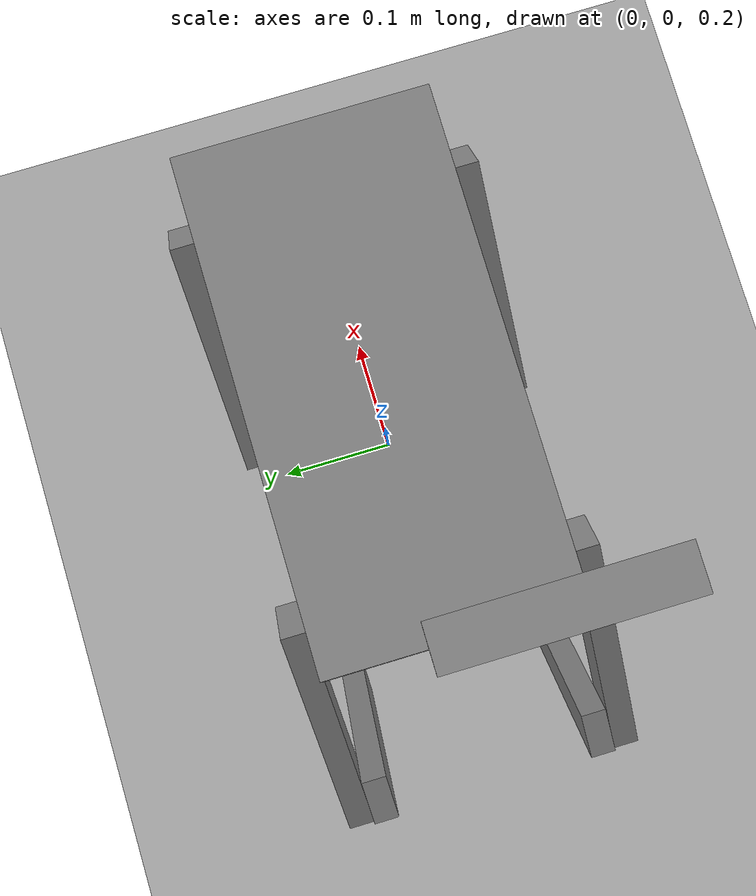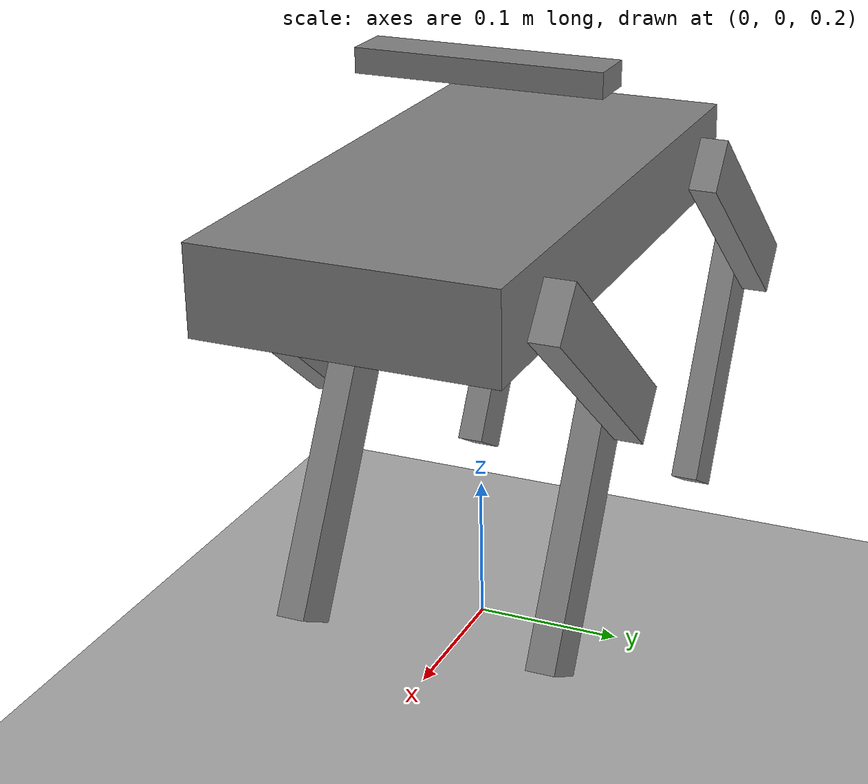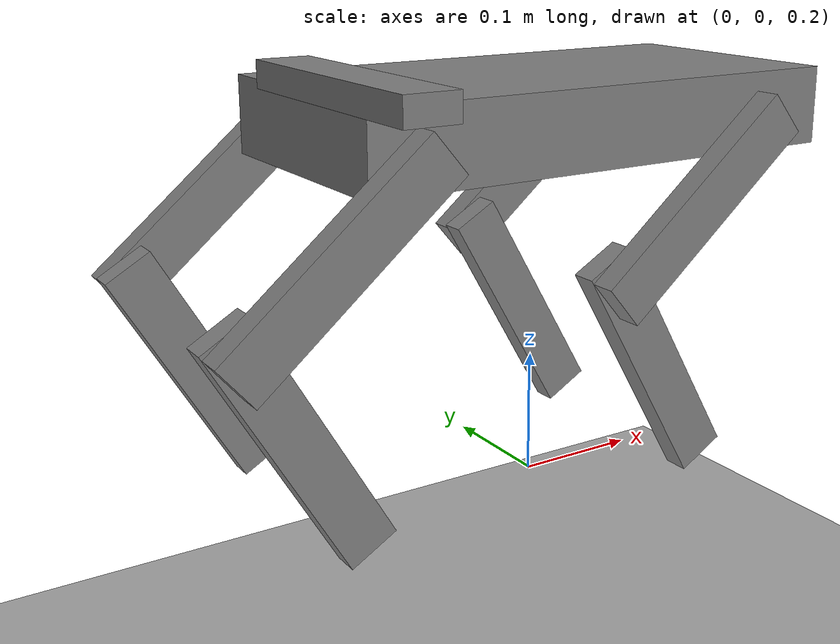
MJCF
<mujoco model="simple_quadraped">
    <compiler coordinate="local"/>
    <option timestep="0.01"/>
    <option gravity="0 0 -9.81"/>
    <asset>
        <texture name="checkered_floor" type="2d" builtin="checker" rgb1="0.8 0.8 0.8" rgb2="0.5 0.5 0.5" width="512" height="512"/>
        <material name="floor_mat" texture="checkered_floor" texrepeat="20 20" reflectance="0.5" shininess="1" specular="1"/>
    </asset>
    <worldbody>
        <light diffuse=".5 .5 .5" pos="0 0 10" dir="0 0 -1"/>
        <body name="torso" pos="0 0 0.5">
            <freejoint/>
            <geom type="box" size="0.2 0.1 0.03" mass="10"/>
            <!-- Front Right Leg -->
            <body name="front_right_leg_upper" pos="0.15 0.11 0" euler="0 50 0">
                <joint name="front_right_shoulder" type="hinge" axis="0 1 0" range="-30 30"/>
                <geom type="box" size="0.02 0.01 0.1" pos="0 0 -0.1" mass="1"/>
                <body name="front_right_leg_lower" pos="-0.02 0 -0.18" euler="0 -80 0">
                    <joint name="front_right_elbow" type="hinge" axis="0 1 0" range="-30 30"/>
                    <geom type="box" size="0.02 0.01 0.1" pos="0 -0.02 -0.1" mass="1"/>
                </body>
            </body>
            <!-- Front Left Leg -->
            <body name="front_left_leg_upper" pos="-0.15 0.11 0" euler="0 50 0">
                <joint name="front_left_shoulder" type="hinge" axis="0 1 0" range="-30 30"/>
                <geom type="box" size="0.02 0.01 0.1" pos="0 0 -0.1" mass="1"/>
                <body name="front_left_leg_lower" pos="-0.02 0 -0.18" euler="0 -80 0">
                    <joint name="front_left_elbow" type="hinge" axis="0 1 0" range="-30 30"/>
                    <geom type="box" size="0.02 0.01 0.1" pos="0 -0.02 -0.1" mass="1"/>
                </body>
            </body>
            <!-- Rear Right Leg -->
            <body name="rear_right_leg_upper" pos="0.15 -0.11 0" euler="0 50 0">
                <joint name="rear_right_shoulder" type="hinge" axis="0 1 0" range="-30 30"/>
                <geom type="box" size="0.02 0.01 0.1" pos="0 0 -0.1" mass="1"/>
                <body name="rear_right_leg_lower" pos="-0.02 0 -0.18" euler="0 -80 0">
                    <joint name="rear_right_elbow" type="hinge" axis="0 1 0" range="-30 30"/>
                    <geom type="box" size="0.02 0.01 0.1" pos="0 0.02 -0.1" mass="1"/>
                </body>
            </body>
            <!-- Rear Left Leg -->
            <body name="rear_left_leg_upper" pos="-0.15 -0.11 0" euler="0 50 0">
                <joint name="rear_left_shoulder" type="hinge" axis="0 1 0" range="-30 30"/>
                <geom type="box" size="0.02 0.01 0.1" pos="0 0 -0.1" mass="1"/>
                <body name="rear_left_leg_lower" pos="-0.02 0 -0.18" euler="0 -80 0">
                    <joint name="rear_left_elbow" type="hinge" axis="0 1 0" range="-30 30"/>
                    <geom type="box" size="0.02 0.01 0.1" pos="0 0.02 -0.1" mass="1"/>
                </body>
            </body>
            <!-- Tail -->
            <body name="tail" pos="-0.2 0 0.04">
                <joint name="tail_joint" type="hinge" axis="0 0 1" range="-180 0"/>
                <geom type="box" size="0.02 0.1 0.01" pos="0 -0.08 0" mass="1"/>
            </body>

        </body>
        <geom type="plane" size="20 20 0.1" material="floor_mat"/>
    </worldbody>
    <actuator>
        <motor name="front_right_shoulder" joint="front_right_shoulder" gear="100"/>
        <motor name="front_right_elbow" joint="front_right_elbow" gear="100"/>
        <motor name="front_left_shoulder" joint="front_left_shoulder" gear="100"/>
        <motor name="front_left_elbow" joint="front_left_elbow" gear="100"/>
        <motor name="rear_right_shoulder" joint="rear_right_shoulder" gear="100"/>
        <motor name="rear_right_elbow" joint="rear_right_elbow" gear="100"/>
        <motor name="rear_left_shoulder" joint="rear_left_shoulder" gear="100"/>
        <motor name="rear_left_elbow" joint="rear_left_elbow" gear="100"/>
        <motor name="tail_joint_motor" joint="tail_joint" gear="100"/>
    </actuator>
</mujoco>
